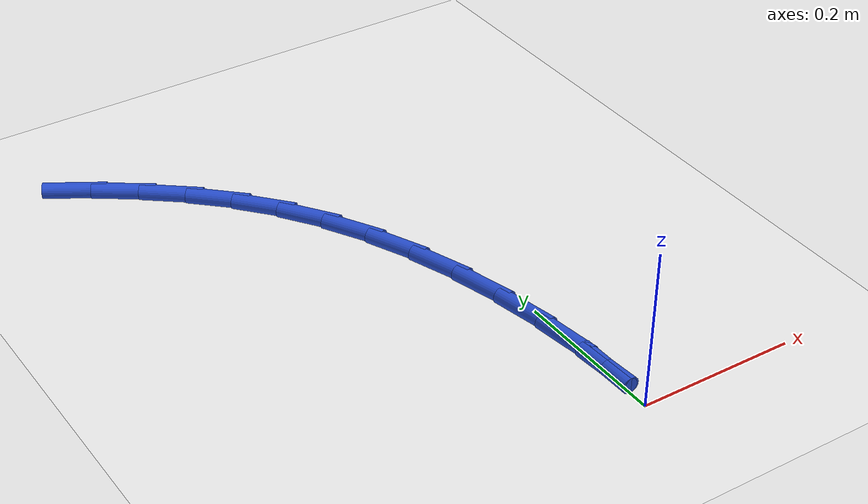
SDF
<sdf version="1.6">
 <world name="default">
  <model name="ground_plane">
   <static>1</static>
   <link name="link">
    <collision name="collision">
     <geometry><plane><normal>0 0 1</normal><size>100 100</size></plane></geometry>
     <surface><friction><ode><mu>100</mu><mu2>50</mu2></ode></friction></surface>
    </collision>
    <visual name="visual">
     <cast_shadows>0</cast_shadows>
     <geometry><plane><normal>0 0 1</normal><size>100 100</size></plane></geometry>
     <material>
      <script><uri>file://media/materials/scripts/gazebo.material</uri><name>Gazebo/WhiteGlow</name></script>
     </material>
    </visual>
   </link>
  </model>
  <model name="line">
   <link name="link_1">
    <pose>-0.001319691942190363 0.06626092963836283 0.01 0 1.57 -1.4910743437936815</pose>
    <collision name="collision">
     <geometry><cylinder><radius>0.01</radius><length>0.08</length></cylinder></geometry>
    </collision>
    <visual name="visual">
     <material>
      <script><name>Gazebo/Blue</name><uri>file://media/materials/scripts/gazebo.material</uri></script>
     </material>
     <geometry><cylinder><radius>0.01</radius><length>0.08</length></cylinder></geometry>
    </visual>
   </link>
   <link name="link_2">
    <pose>-0.006598687636825879 0.1323381524575184 0.01 0 1.57 -1.4292194418476216</pose>
    <collision name="collision">
     <geometry><cylinder><radius>0.01</radius><length>0.08</length></cylinder></geometry>
    </collision>
    <visual name="visual">
     <material>
      <script><name>Gazebo/Blue</name><uri>file://media/materials/scripts/gazebo.material</uri></script>
     </material>
     <geometry><cylinder><radius>0.01</radius><length>0.08</length></cylinder></geometry>
    </visual>
   </link>
   <link name="link_3">
    <pose>-0.01591132067690818 0.19767599973874636 0.01 0 1.57 -1.3642286640627301</pose>
    <collision name="collision">
     <geometry><cylinder><radius>0.01</radius><length>0.08</length></cylinder></geometry>
    </collision>
    <visual name="visual">
     <material>
      <script><name>Gazebo/Blue</name><uri>file://media/materials/scripts/gazebo.material</uri></script>
     </material>
     <geometry><cylinder><radius>0.01</radius><length>0.08</length></cylinder></geometry>
    </visual>
   </link>
   <link name="link_4">
    <pose>-0.029331924655438997 0.2617188027633264 0.01 0 1.57 -1.294969979975413</pose>
    <collision name="collision">
     <geometry><cylinder><radius>0.01</radius><length>0.08</length></cylinder></geometry>
    </collision>
    <visual name="visual">
     <material>
      <script><name>Gazebo/Blue</name><uri>file://media/materials/scripts/gazebo.material</uri></script>
     </material>
     <geometry><cylinder><radius>0.01</radius><length>0.08</length></cylinder></geometry>
    </visual>
   </link>
   <link name="link_5">
    <pose>-0.046934833165420034 0.32391089281253804 0.01 0 1.57 -1.220264201615301</pose>
    <collision name="collision">
     <geometry><cylinder><radius>0.01</radius><length>0.08</length></cylinder></geometry>
    </collision>
    <visual name="visual">
     <material>
      <script><name>Gazebo/Blue</name><uri>file://media/materials/scripts/gazebo.material</uri></script>
     </material>
     <geometry><cylinder><radius>0.01</radius><length>0.08</length></cylinder></geometry>
    </visual>
   </link>
   <link name="link_6">
    <pose>-0.06879437979985295 0.3836966011676607 0.01 0 1.57 -1.1389078442902283</pose>
    <collision name="collision">
     <geometry><cylinder><radius>0.01</radius><length>0.08</length></cylinder></geometry>
    </collision>
    <visual name="visual">
     <material>
      <script><name>Gazebo/Blue</name><uri>file://media/materials/scripts/gazebo.material</uri></script>
     </material>
     <geometry><cylinder><radius>0.01</radius><length>0.08</length></cylinder></geometry>
    </visual>
   </link>
   <link name="link_7">
    <pose>-0.09498489815173952 0.4405202591099741 0.01 0 1.57 -1.0497390890010738</pose>
    <collision name="collision">
     <geometry><cylinder><radius>0.01</radius><length>0.08</length></cylinder></geometry>
    </collision>
    <visual name="visual">
     <material>
      <script><name>Gazebo/Blue</name><uri>file://media/materials/scripts/gazebo.material</uri></script>
     </material>
     <geometry><cylinder><radius>0.01</radius><length>0.08</length></cylinder></geometry>
    </visual>
   </link>
   <link name="link_8">
    <pose>-0.12558072181408142 0.493826197920758 0.01 0 1.57 -0.9517674580278258</pose>
    <collision name="collision">
     <geometry><cylinder><radius>0.01</radius><length>0.08</length></cylinder></geometry>
    </collision>
    <visual name="visual">
     <material>
      <script><name>Gazebo/Blue</name><uri>file://media/materials/scripts/gazebo.material</uri></script>
     </material>
     <geometry><cylinder><radius>0.01</radius><length>0.08</length></cylinder></geometry>
    </visual>
   </link>
   <link name="link_9">
    <pose>-0.16065617210218355 0.5430587738673051 0.01 0 1.57 -0.8480917166074329</pose>
    <collision name="collision">
     <geometry><cylinder><radius>0.01</radius><length>0.08</length></cylinder></geometry>
    </collision>
    <visual name="visual">
     <material>
      <script><name>Gazebo/Blue</name><uri>file://media/materials/scripts/gazebo.material</uri></script>
     </material>
     <geometry><cylinder><radius>0.01</radius><length>0.08</length></cylinder></geometry>
    </visual>
   </link>
   <link name="link_10">
    <pose>-0.20017997690462097 0.587877233584547 0.01 0 1.57 -0.7524901507310902</pose>
    <collision name="collision">
     <geometry><cylinder><radius>0.01</radius><length>0.08</length></cylinder></geometry>
    </collision>
    <visual name="visual">
     <material>
      <script><name>Gazebo/Blue</name><uri>file://media/materials/scripts/gazebo.material</uri></script>
     </material>
     <geometry><cylinder><radius>0.01</radius><length>0.08</length></cylinder></geometry>
    </visual>
   </link>
   <link name="link_11">
    <pose>-0.24375858819391424 0.6286780817659736 0.01 0 1.57 -0.6696513700569285</pose>
    <collision name="collision">
     <geometry><cylinder><radius>0.01</radius><length>0.08</length></cylinder></geometry>
    </collision>
    <visual name="visual">
     <material>
      <script><name>Gazebo/Blue</name><uri>file://media/materials/scripts/gazebo.material</uri></script>
     </material>
     <geometry><cylinder><radius>0.01</radius><length>0.08</length></cylinder></geometry>
    </visual>
   </link>
   <link name="link_12">
    <pose>-0.29092082714091183 0.6660158074799374 0.01 0 1.57 -0.6004649653263834</pose>
    <collision name="collision">
     <geometry><cylinder><radius>0.01</radius><length>0.08</length></cylinder></geometry>
    </collision>
    <visual name="visual">
     <material>
      <script><name>Gazebo/Blue</name><uri>file://media/materials/scripts/gazebo.material</uri></script>
     </material>
     <geometry><cylinder><radius>0.01</radius><length>0.08</length></cylinder></geometry>
    </visual>
   </link>
   <link name="link_13">
    <pose>-0.3411955149164616 0.7004448997947903 0.01 0 1.57 -0.5449284655732446</pose>
    <collision name="collision">
     <geometry><cylinder><radius>0.01</radius><length>0.08</length></cylinder></geometry>
    </collision>
    <visual name="visual">
     <material>
      <script><name>Gazebo/Blue</name><uri>file://media/materials/scripts/gazebo.material</uri></script>
     </material>
     <geometry><cylinder><radius>0.01</radius><length>0.08</length></cylinder></geometry>
    </visual>
   </link>
   <link name="link_111">
    <pose>-0.001310777933667344 0.06630249568503575 0.01 0 1.57 -1.5510292397159955</pose>
    <collision name="collision">
     <geometry><cylinder><radius>0.01</radius><length>0.08</length></cylinder></geometry>
    </collision>
    <visual name="visual">
     <material>
      <script><name>Gazebo/Blue</name><uri>file://media/materials/scripts/gazebo.material</uri></script>
     </material>
     <geometry><cylinder><radius>0.01</radius><length>0.08</length></cylinder></geometry>
    </visual>
   </link>
  </model>
 </world>
</sdf>
